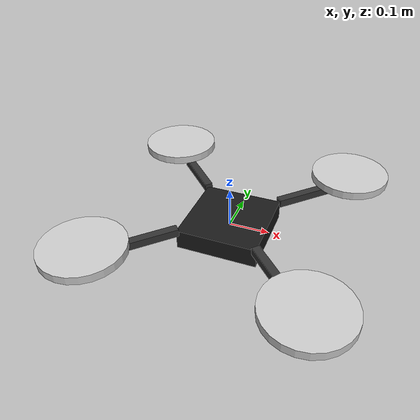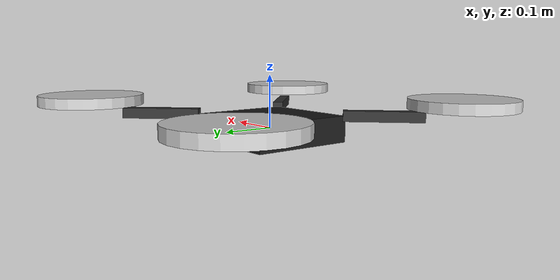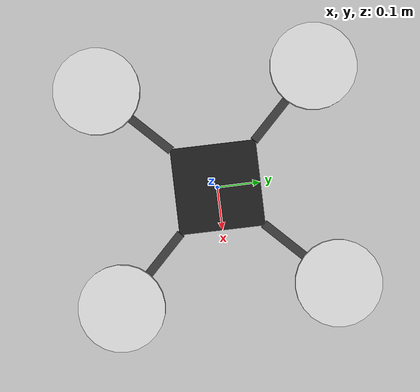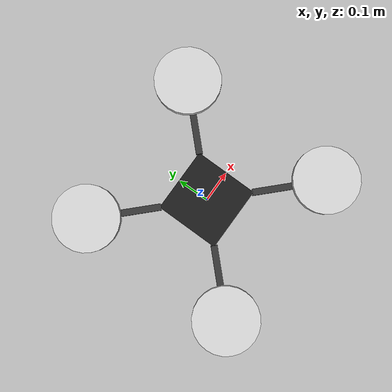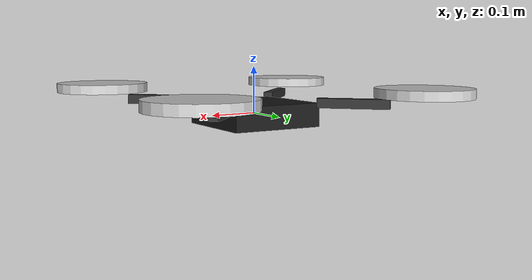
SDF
<?xml version="1.0"?>
<sdf version="1.9">
  <model name="custom_drone">
    <!-- Central Frame (thinner, more drone-like) -->
    <link name="frame">
      <pose>0 0 0 0 0 0</pose>
      <inertial>
        <mass>1.0</mass>
        <inertia>
          <ixx>0.01</ixx><ixy>0</ixy><ixz>0</ixz>
          <iyy>0.01</iyy><iyz>0</iyz>
          <izz>0.01</izz>
        </inertia>
      </inertial>
      <visual name="frame_visual">
        <pose>0 0 0 0 0 0</pose>
        <geometry>
          <box>
            <size>0.2 0.2 0.05</size>
          </box>
        </geometry>
        <material>
          <ambient>0.1 0.1 0.1 1</ambient>
          <diffuse>0.1 0.1 0.1 1</diffuse>
        </material>
      </visual>
      <collision name="frame_collision">
        <pose>0 0 0 0 0 0</pose>
        <geometry>
          <box>
            <size>0.2 0.2 0.05</size>
          </box>
        </geometry>
      </collision>
    </link>

    <!-- Arm 1 (front-right) -->
    <link name="arm_1">
      <pose>0.15 0.15 0.025 0 0 0.785</pose>
      <inertial>
        <mass>0.05</mass>
        <inertia>
          <ixx>0.0001</ixx><ixy>0</ixy><ixz>0</ixz>
          <iyy>0.0001</iyy><iyz>0</iyz>
          <izz>0.0001</izz>
        </inertia>
      </inertial>
      <visual name="arm_1_visual">
        <geometry>
          <box>
            <size>0.15 0.02 0.02</size>
          </box>
        </geometry>
        <material>
          <ambient>0.2 0.2 0.2 1</ambient>
          <diffuse>0.2 0.2 0.2 1</diffuse>
        </material>
      </visual>
      <collision name="arm_1_collision">
        <geometry>
          <box>
            <size>0.15 0.02 0.02</size>
          </box>
        </geometry>
      </collision>
    </link>

    <!-- Arm 2 (front-left) -->
    <link name="arm_2">
      <pose>0.15 -0.15 0.025 0 0 -0.785</pose>
      <inertial>
        <mass>0.05</mass>
        <inertia>
          <ixx>0.0001</ixx><ixy>0</ixy><ixz>0</ixz>
          <iyy>0.0001</iyy><iyz>0</iyz>
          <izz>0.0001</izz>
        </inertia>
      </inertial>
      <visual name="arm_2_visual">
        <geometry>
          <box>
            <size>0.15 0.02 0.02</size>
          </box>
        </geometry>
        <material>
          <ambient>0.2 0.2 0.2 1</ambient>
          <diffuse>0.2 0.2 0.2 1</diffuse>
        </material>
      </visual>
      <collision name="arm_2_collision">
        <geometry>
          <box>
            <size>0.15 0.02 0.02</size>
          </box>
        </geometry>
      </collision>
    </link>

    <!-- Arm 3 (back-right) -->
    <link name="arm_3">
      <pose>-0.15 0.15 0.025 0 0 2.356</pose>
      <inertial>
        <mass>0.05</mass>
        <inertia>
          <ixx>0.0001</ixx><ixy>0</ixy><ixz>0</ixz>
          <iyy>0.0001</iyy><iyz>0</iyz>
          <izz>0.0001</izz>
        </inertia>
      </inertial>
      <visual name="arm_3_visual">
        <geometry>
          <box>
            <size>0.15 0.02 0.02</size>
          </box>
        </geometry>
        <material>
          <ambient>0.2 0.2 0.2 1</ambient>
          <diffuse>0.2 0.2 0.2 1</diffuse>
        </material>
      </visual>
      <collision name="arm_3_collision">
        <geometry>
          <box>
            <size>0.15 0.02 0.02</size>
          </box>
        </geometry>
      </collision>
    </link>

    <!-- Arm 4 (back-left) -->
    <link name="arm_4">
      <pose>-0.15 -0.15 0.025 0 0 -2.356</pose>
      <inertial>
        <mass>0.05</mass>
        <inertia>
          <ixx>0.0001</ixx><ixy>0</ixy><ixz>0</ixz>
          <iyy>0.0001</iyy><iyz>0</iyz>
          <izz>0.0001</izz>
        </inertia>
      </inertial>
      <visual name="arm_4_visual">
        <geometry>
          <box>
            <size>0.15 0.02 0.02</size>
          </box>
        </geometry>
        <material>
          <ambient>0.2 0.2 0.2 1</ambient>
          <diffuse>0.2 0.2 0.2 1</diffuse>
        </material>
      </visual>
      <collision name="arm_4_collision">
        <geometry>
          <box>
            <size>0.15 0.02 0.02</size>
          </box>
        </geometry>
      </collision>
    </link>

    <!-- Propeller 1 (front-right) -->
    <link name="prop_1">
      <pose>0.25 0.25 0.05 0 0 0</pose>
      <inertial>
        <mass>0.02</mass>
        <inertia>
          <ixx>0.00005</ixx><ixy>0</ixy><ixz>0</ixz>
          <iyy>0.00005</iyy><iyz>0</iyz>
          <izz>0.00005</izz>
        </inertia>
      </inertial>
      <visual name="prop_1_visual">
        <geometry>
          <cylinder>
            <radius>0.1</radius>
            <length>0.02</length>
          </cylinder>
        </geometry>
        <material>
          <ambient>0.8 0.8 0.8 1</ambient>
          <diffuse>0.8 0.8 0.8 1</diffuse>
        </material>
      </visual>
      <collision name="prop_1_collision">
        <geometry>
          <cylinder>
            <radius>0.1</radius>
            <length>0.02</length>
          </cylinder>
        </geometry>
      </collision>
    </link>

    <!-- Propeller 2 (front-left) -->
    <link name="prop_2">
      <pose>0.25 -0.25 0.05 0 0 0</pose>
      <inertial>
        <mass>0.02</mass>
        <inertia>
          <ixx>0.00005</ixx><ixy>0</ixy><ixz>0</ixz>
          <iyy>0.00005</iyy><iyz>0</iyz>
          <izz>0.00005</izz>
        </inertia>
      </inertial>
      <visual name="prop_2_visual">
        <geometry>
          <cylinder>
            <radius>0.1</radius>
            <length>0.02</length>
          </cylinder>
        </geometry>
        <material>
          <ambient>0.8 0.8 0.8 1</ambient>
          <diffuse>0.8 0.8 0.8 1</diffuse>
        </material>
      </visual>
      <collision name="prop_2_collision">
        <geometry>
          <cylinder>
            <radius>0.1</radius>
            <length>0.02</length>
          </cylinder>
        </geometry>
      </collision>
    </link>

    <!-- Propeller 3 (back-right) -->
    <link name="prop_3">
      <pose>-0.25 0.25 0.05 0 0 0</pose>
      <inertial>
        <mass>0.02</mass>
        <inertia>
          <ixx>0.00005</ixx><ixy>0</ixy><ixz>0</ixz>
          <iyy>0.00005</iyy><iyz>0</iyz>
          <izz>0.00005</izz>
        </inertia>
      </inertial>
      <visual name="prop_3_visual">
        <geometry>
          <cylinder>
            <radius>0.1</radius>
            <length>0.02</length>
          </cylinder>
        </geometry>
        <material>
          <ambient>0.8 0.8 0.8 1</ambient>
          <diffuse>0.8 0.8 0.8 1</diffuse>
        </material>
      </visual>
      <collision name="prop_3_collision">
        <geometry>
          <cylinder>
            <radius>0.1</radius>
            <length>0.02</length>
          </cylinder>
        </geometry>
      </collision>
    </link>

    <!-- Propeller 4 (back-left) -->
    <link name="prop_4">
      <pose>-0.25 -0.25 0.05 0 0 0</pose>
      <inertial>
        <mass>0.02</mass>
        <inertia>
          <ixx>0.00005</ixx><ixy>0</ixy><ixz>0</ixz>
          <iyy>0.00005</iyy><iyz>0</iyz>
          <izz>0.00005</izz>
        </inertia>
      </inertial>
      <visual name="prop_4_visual">
        <geometry>
          <cylinder>
            <radius>0.1</radius>
            <length>0.02</length>
          </cylinder>
        </geometry>
        <material>
          <ambient>0.8 0.8 0.8 1</ambient>
          <diffuse>0.8 0.8 0.8 1</diffuse>
        </material>
      </visual>
      <collision name="prop_4_collision">
        <geometry>
          <cylinder>
            <radius>0.1</radius>
            <length>0.02</length>
          </cylinder>
        </geometry>
      </collision>
    </link>

    <!-- Joints to connect arms and props to frame -->
    <joint name="arm_1_joint" type="fixed">
      <parent>frame</parent>
      <child>arm_1</child>
    </joint>
    <joint name="arm_2_joint" type="fixed">
      <parent>frame</parent>
      <child>arm_2</child>
    </joint>
    <joint name="arm_3_joint" type="fixed">
      <parent>frame</parent>
      <child>arm_3</child>
    </joint>
    <joint name="arm_4_joint" type="fixed">
      <parent>frame</parent>
      <child>arm_4</child>
    </joint>
    <joint name="prop_1_joint" type="fixed">
      <parent>arm_1</parent>
      <child>prop_1</child>
    </joint>
    <joint name="prop_2_joint" type="fixed">
      <parent>arm_2</parent>
      <child>prop_2</child>
    </joint>
    <joint name="prop_3_joint" type="fixed">
      <parent>arm_3</parent>
      <child>prop_3</child>
    </joint>
    <joint name="prop_4_joint" type="fixed">
      <parent>arm_4</parent>
      <child>prop_4</child>
    </joint>

    <!-- Velocity Control Plugin -->
    <plugin name="gz::sim::systems::VelocityControl" filename="libignition-gazebo6-velocity-control-system.so">
      <link_name>frame</link_name>
      <topic>/drone_X/cmd_vel</topic>
      <max_linear_acceleration>10.0</max_linear_acceleration>
      <max_angular_acceleration>1.0</max_angular_acceleration>
      <max_linear_velocity>5.0</max_linear_velocity>
      <max_angular_velocity>1.0</max_angular_velocity>
    </plugin>
  </model>
</sdf>
